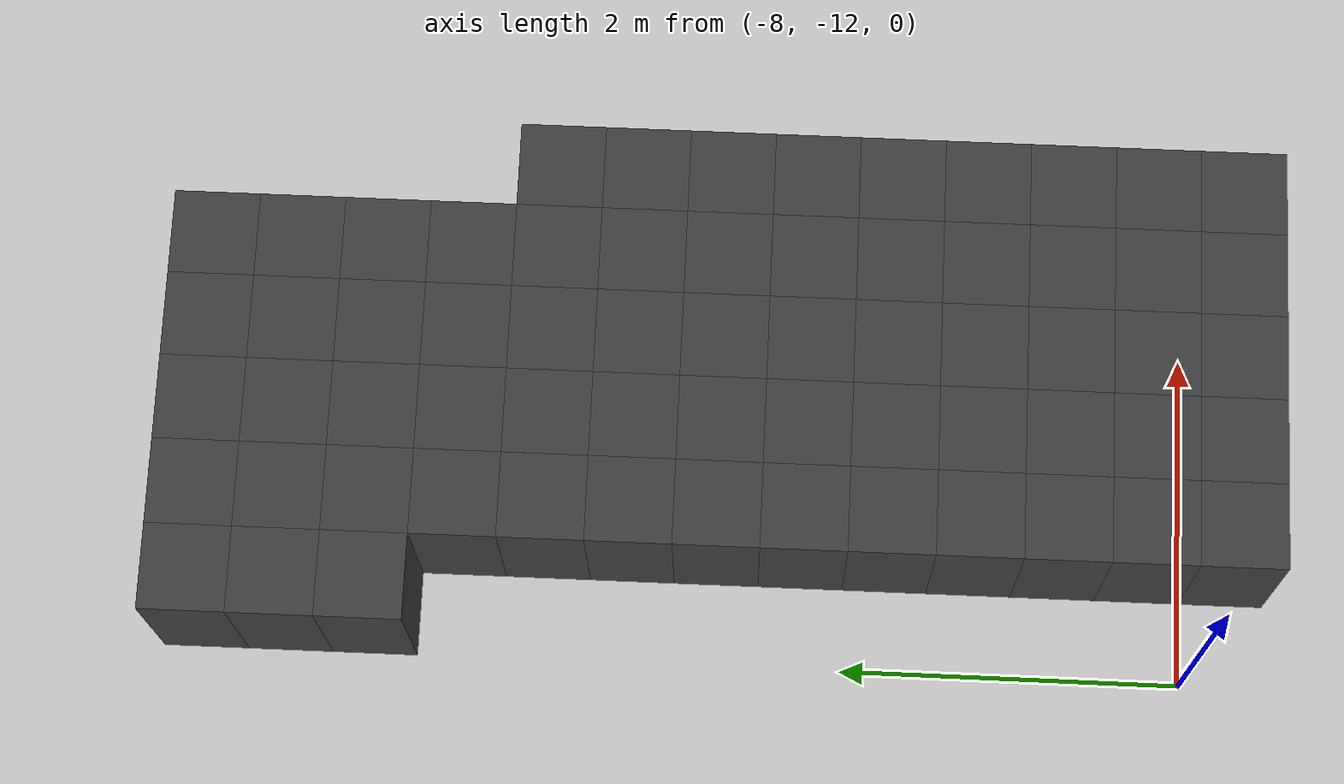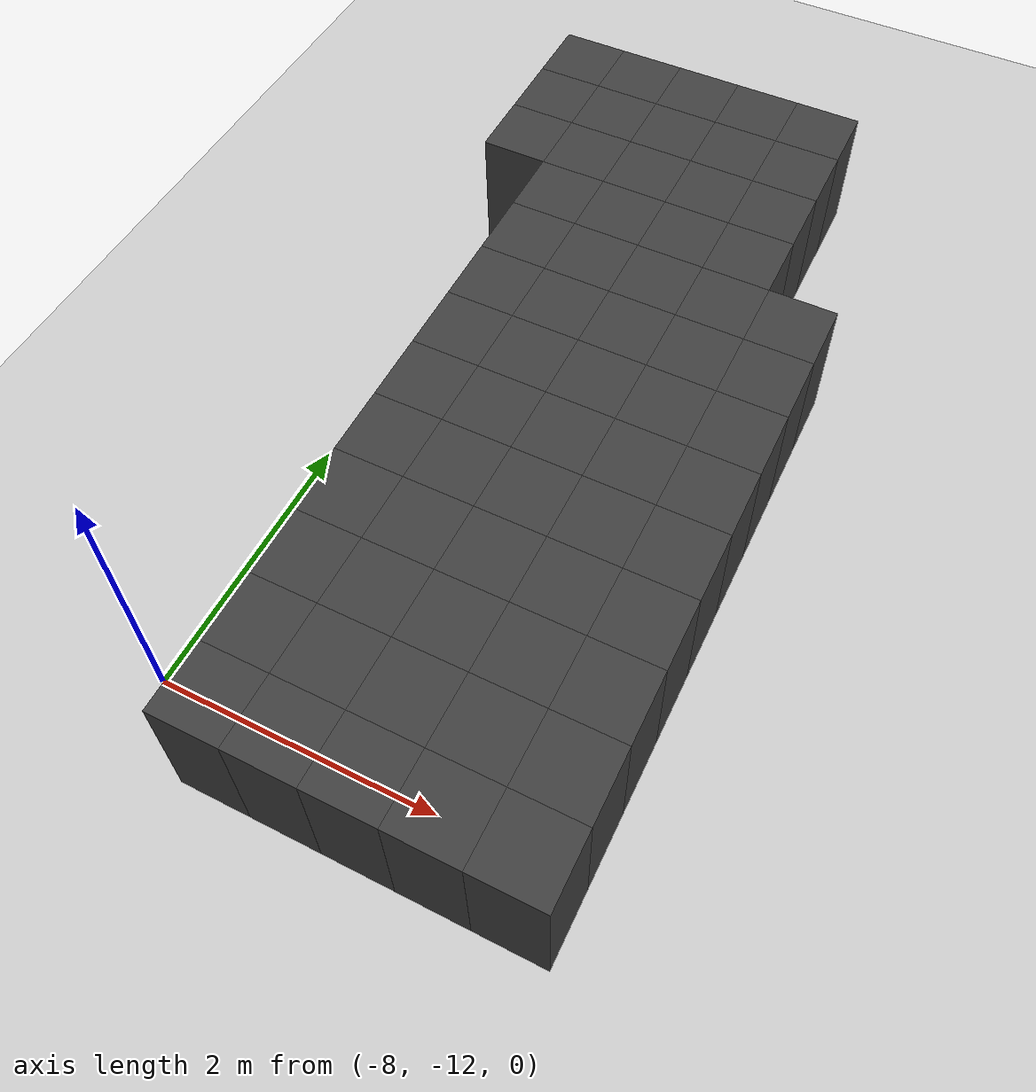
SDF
<sdf version="1.7">
 <world name="map_11515">
  <model name="ground_plane">
   <static>true</static>
   <link name="link">
    <collision name="collision">
     <geometry><plane><normal>0 0 1</normal><size>200 200</size></plane></geometry>
    </collision>
    <visual name="visual">
     <geometry><plane><normal>0 0 1</normal><size>200 200</size></plane></geometry>
     <material><ambient>0.8 0.8 0.8 1</ambient><diffuse>0.8 0.8 0.8 1</diffuse></material>
    </visual>
   </link>
  </model>
  <model name="maze_environment">
   <static>true</static>
   <link name="wall_1610">
    <pose>-7.750 -6.250 0.500 0 0 0</pose>
    <collision name="col"><geometry><box><size>0.5 0.5 1.0</size></box></geometry></collision>
    <visual name="vis">
     <geometry><box><size>0.5 0.5 1.0</size></box></geometry>
     <material><ambient>0.15 0.15 0.15 1</ambient><diffuse>0.25 0.25 0.25 1</diffuse></material>
    </visual>
   </link>
   <link name="wall_1611">
    <pose>-7.250 -6.250 0.500 0 0 0</pose>
    <collision name="col"><geometry><box><size>0.5 0.5 1.0</size></box></geometry></collision>
    <visual name="vis">
     <geometry><box><size>0.5 0.5 1.0</size></box></geometry>
     <material><ambient>0.15 0.15 0.15 1</ambient><diffuse>0.25 0.25 0.25 1</diffuse></material>
    </visual>
   </link>
   <link name="wall_1612">
    <pose>-6.750 -6.250 0.500 0 0 0</pose>
    <collision name="col"><geometry><box><size>0.5 0.5 1.0</size></box></geometry></collision>
    <visual name="vis">
     <geometry><box><size>0.5 0.5 1.0</size></box></geometry>
     <material><ambient>0.15 0.15 0.15 1</ambient><diffuse>0.25 0.25 0.25 1</diffuse></material>
    </visual>
   </link>
   <link name="wall_1613">
    <pose>-6.250 -6.250 0.500 0 0 0</pose>
    <collision name="col"><geometry><box><size>0.5 0.5 1.0</size></box></geometry></collision>
    <visual name="vis">
     <geometry><box><size>0.5 0.5 1.0</size></box></geometry>
     <material><ambient>0.15 0.15 0.15 1</ambient><diffuse>0.25 0.25 0.25 1</diffuse></material>
    </visual>
   </link>
   <link name="wall_1614">
    <pose>-5.750 -6.250 0.500 0 0 0</pose>
    <collision name="col"><geometry><box><size>0.5 0.5 1.0</size></box></geometry></collision>
    <visual name="vis">
     <geometry><box><size>0.5 0.5 1.0</size></box></geometry>
     <material><ambient>0.15 0.15 0.15 1</ambient><diffuse>0.25 0.25 0.25 1</diffuse></material>
    </visual>
   </link>
   <link name="wall_1659">
    <pose>-7.750 -6.750 0.500 0 0 0</pose>
    <collision name="col"><geometry><box><size>0.5 0.5 1.0</size></box></geometry></collision>
    <visual name="vis">
     <geometry><box><size>0.5 0.5 1.0</size></box></geometry>
     <material><ambient>0.15 0.15 0.15 1</ambient><diffuse>0.25 0.25 0.25 1</diffuse></material>
    </visual>
   </link>
   <link name="wall_1660">
    <pose>-7.250 -6.750 0.500 0 0 0</pose>
    <collision name="col"><geometry><box><size>0.5 0.5 1.0</size></box></geometry></collision>
    <visual name="vis">
     <geometry><box><size>0.5 0.5 1.0</size></box></geometry>
     <material><ambient>0.15 0.15 0.15 1</ambient><diffuse>0.25 0.25 0.25 1</diffuse></material>
    </visual>
   </link>
   <link name="wall_1661">
    <pose>-6.750 -6.750 0.500 0 0 0</pose>
    <collision name="col"><geometry><box><size>0.5 0.5 1.0</size></box></geometry></collision>
    <visual name="vis">
     <geometry><box><size>0.5 0.5 1.0</size></box></geometry>
     <material><ambient>0.15 0.15 0.15 1</ambient><diffuse>0.25 0.25 0.25 1</diffuse></material>
    </visual>
   </link>
   <link name="wall_1662">
    <pose>-6.250 -6.750 0.500 0 0 0</pose>
    <collision name="col"><geometry><box><size>0.5 0.5 1.0</size></box></geometry></collision>
    <visual name="vis">
     <geometry><box><size>0.5 0.5 1.0</size></box></geometry>
     <material><ambient>0.15 0.15 0.15 1</ambient><diffuse>0.25 0.25 0.25 1</diffuse></material>
    </visual>
   </link>
   <link name="wall_1663">
    <pose>-5.750 -6.750 0.500 0 0 0</pose>
    <collision name="col"><geometry><box><size>0.5 0.5 1.0</size></box></geometry></collision>
    <visual name="vis">
     <geometry><box><size>0.5 0.5 1.0</size></box></geometry>
     <material><ambient>0.15 0.15 0.15 1</ambient><diffuse>0.25 0.25 0.25 1</diffuse></material>
    </visual>
   </link>
   <link name="wall_1708">
    <pose>-7.750 -7.250 0.500 0 0 0</pose>
    <collision name="col"><geometry><box><size>0.5 0.5 1.0</size></box></geometry></collision>
    <visual name="vis">
     <geometry><box><size>0.5 0.5 1.0</size></box></geometry>
     <material><ambient>0.15 0.15 0.15 1</ambient><diffuse>0.25 0.25 0.25 1</diffuse></material>
    </visual>
   </link>
   <link name="wall_1709">
    <pose>-7.250 -7.250 0.500 0 0 0</pose>
    <collision name="col"><geometry><box><size>0.5 0.5 1.0</size></box></geometry></collision>
    <visual name="vis">
     <geometry><box><size>0.5 0.5 1.0</size></box></geometry>
     <material><ambient>0.15 0.15 0.15 1</ambient><diffuse>0.25 0.25 0.25 1</diffuse></material>
    </visual>
   </link>
   <link name="wall_1710">
    <pose>-6.750 -7.250 0.500 0 0 0</pose>
    <collision name="col"><geometry><box><size>0.5 0.5 1.0</size></box></geometry></collision>
    <visual name="vis">
     <geometry><box><size>0.5 0.5 1.0</size></box></geometry>
     <material><ambient>0.15 0.15 0.15 1</ambient><diffuse>0.25 0.25 0.25 1</diffuse></material>
    </visual>
   </link>
   <link name="wall_1711">
    <pose>-6.250 -7.250 0.500 0 0 0</pose>
    <collision name="col"><geometry><box><size>0.5 0.5 1.0</size></box></geometry></collision>
    <visual name="vis">
     <geometry><box><size>0.5 0.5 1.0</size></box></geometry>
     <material><ambient>0.15 0.15 0.15 1</ambient><diffuse>0.25 0.25 0.25 1</diffuse></material>
    </visual>
   </link>
   <link name="wall_1712">
    <pose>-5.750 -7.250 0.500 0 0 0</pose>
    <collision name="col"><geometry><box><size>0.5 0.5 1.0</size></box></geometry></collision>
    <visual name="vis">
     <geometry><box><size>0.5 0.5 1.0</size></box></geometry>
     <material><ambient>0.15 0.15 0.15 1</ambient><diffuse>0.25 0.25 0.25 1</diffuse></material>
    </visual>
   </link>
   <link name="wall_1758">
    <pose>-7.250 -7.750 0.500 0 0 0</pose>
    <collision name="col"><geometry><box><size>0.5 0.5 1.0</size></box></geometry></collision>
    <visual name="vis">
     <geometry><box><size>0.5 0.5 1.0</size></box></geometry>
     <material><ambient>0.15 0.15 0.15 1</ambient><diffuse>0.25 0.25 0.25 1</diffuse></material>
    </visual>
   </link>
   <link name="wall_1759">
    <pose>-6.750 -7.750 0.500 0 0 0</pose>
    <collision name="col"><geometry><box><size>0.5 0.5 1.0</size></box></geometry></collision>
    <visual name="vis">
     <geometry><box><size>0.5 0.5 1.0</size></box></geometry>
     <material><ambient>0.15 0.15 0.15 1</ambient><diffuse>0.25 0.25 0.25 1</diffuse></material>
    </visual>
   </link>
   <link name="wall_1760">
    <pose>-6.250 -7.750 0.500 0 0 0</pose>
    <collision name="col"><geometry><box><size>0.5 0.5 1.0</size></box></geometry></collision>
    <visual name="vis">
     <geometry><box><size>0.5 0.5 1.0</size></box></geometry>
     <material><ambient>0.15 0.15 0.15 1</ambient><diffuse>0.25 0.25 0.25 1</diffuse></material>
    </visual>
   </link>
   <link name="wall_1761">
    <pose>-5.750 -7.750 0.500 0 0 0</pose>
    <collision name="col"><geometry><box><size>0.5 0.5 1.0</size></box></geometry></collision>
    <visual name="vis">
     <geometry><box><size>0.5 0.5 1.0</size></box></geometry>
     <material><ambient>0.15 0.15 0.15 1</ambient><diffuse>0.25 0.25 0.25 1</diffuse></material>
    </visual>
   </link>
   <link name="wall_1807">
    <pose>-7.250 -8.250 0.500 0 0 0</pose>
    <collision name="col"><geometry><box><size>0.5 0.5 1.0</size></box></geometry></collision>
    <visual name="vis">
     <geometry><box><size>0.5 0.5 1.0</size></box></geometry>
     <material><ambient>0.15 0.15 0.15 1</ambient><diffuse>0.25 0.25 0.25 1</diffuse></material>
    </visual>
   </link>
   <link name="wall_1808">
    <pose>-6.750 -8.250 0.500 0 0 0</pose>
    <collision name="col"><geometry><box><size>0.5 0.5 1.0</size></box></geometry></collision>
    <visual name="vis">
     <geometry><box><size>0.5 0.5 1.0</size></box></geometry>
     <material><ambient>0.15 0.15 0.15 1</ambient><diffuse>0.25 0.25 0.25 1</diffuse></material>
    </visual>
   </link>
   <link name="wall_1809">
    <pose>-6.250 -8.250 0.500 0 0 0</pose>
    <collision name="col"><geometry><box><size>0.5 0.5 1.0</size></box></geometry></collision>
    <visual name="vis">
     <geometry><box><size>0.5 0.5 1.0</size></box></geometry>
     <material><ambient>0.15 0.15 0.15 1</ambient><diffuse>0.25 0.25 0.25 1</diffuse></material>
    </visual>
   </link>
   <link name="wall_1810">
    <pose>-5.750 -8.250 0.500 0 0 0</pose>
    <collision name="col"><geometry><box><size>0.5 0.5 1.0</size></box></geometry></collision>
    <visual name="vis">
     <geometry><box><size>0.5 0.5 1.0</size></box></geometry>
     <material><ambient>0.15 0.15 0.15 1</ambient><diffuse>0.25 0.25 0.25 1</diffuse></material>
    </visual>
   </link>
   <link name="wall_1811">
    <pose>-5.250 -8.250 0.500 0 0 0</pose>
    <collision name="col"><geometry><box><size>0.5 0.5 1.0</size></box></geometry></collision>
    <visual name="vis">
     <geometry><box><size>0.5 0.5 1.0</size></box></geometry>
     <material><ambient>0.15 0.15 0.15 1</ambient><diffuse>0.25 0.25 0.25 1</diffuse></material>
    </visual>
   </link>
   <link name="wall_1856">
    <pose>-7.250 -8.750 0.500 0 0 0</pose>
    <collision name="col"><geometry><box><size>0.5 0.5 1.0</size></box></geometry></collision>
    <visual name="vis">
     <geometry><box><size>0.5 0.5 1.0</size></box></geometry>
     <material><ambient>0.15 0.15 0.15 1</ambient><diffuse>0.25 0.25 0.25 1</diffuse></material>
    </visual>
   </link>
   <link name="wall_1857">
    <pose>-6.750 -8.750 0.500 0 0 0</pose>
    <collision name="col"><geometry><box><size>0.5 0.5 1.0</size></box></geometry></collision>
    <visual name="vis">
     <geometry><box><size>0.5 0.5 1.0</size></box></geometry>
     <material><ambient>0.15 0.15 0.15 1</ambient><diffuse>0.25 0.25 0.25 1</diffuse></material>
    </visual>
   </link>
   <link name="wall_1858">
    <pose>-6.250 -8.750 0.500 0 0 0</pose>
    <collision name="col"><geometry><box><size>0.5 0.5 1.0</size></box></geometry></collision>
    <visual name="vis">
     <geometry><box><size>0.5 0.5 1.0</size></box></geometry>
     <material><ambient>0.15 0.15 0.15 1</ambient><diffuse>0.25 0.25 0.25 1</diffuse></material>
    </visual>
   </link>
   <link name="wall_1859">
    <pose>-5.750 -8.750 0.500 0 0 0</pose>
    <collision name="col"><geometry><box><size>0.5 0.5 1.0</size></box></geometry></collision>
    <visual name="vis">
     <geometry><box><size>0.5 0.5 1.0</size></box></geometry>
     <material><ambient>0.15 0.15 0.15 1</ambient><diffuse>0.25 0.25 0.25 1</diffuse></material>
    </visual>
   </link>
   <link name="wall_1860">
    <pose>-5.250 -8.750 0.500 0 0 0</pose>
    <collision name="col"><geometry><box><size>0.5 0.5 1.0</size></box></geometry></collision>
    <visual name="vis">
     <geometry><box><size>0.5 0.5 1.0</size></box></geometry>
     <material><ambient>0.15 0.15 0.15 1</ambient><diffuse>0.25 0.25 0.25 1</diffuse></material>
    </visual>
   </link>
   <link name="wall_1899">
    <pose>-7.250 -9.250 0.500 0 0 0</pose>
    <collision name="col"><geometry><box><size>0.5 0.5 1.0</size></box></geometry></collision>
    <visual name="vis">
     <geometry><box><size>0.5 0.5 1.0</size></box></geometry>
     <material><ambient>0.15 0.15 0.15 1</ambient><diffuse>0.25 0.25 0.25 1</diffuse></material>
    </visual>
   </link>
   <link name="wall_1900">
    <pose>-6.750 -9.250 0.500 0 0 0</pose>
    <collision name="col"><geometry><box><size>0.5 0.5 1.0</size></box></geometry></collision>
    <visual name="vis">
     <geometry><box><size>0.5 0.5 1.0</size></box></geometry>
     <material><ambient>0.15 0.15 0.15 1</ambient><diffuse>0.25 0.25 0.25 1</diffuse></material>
    </visual>
   </link>
   <link name="wall_1901">
    <pose>-6.250 -9.250 0.500 0 0 0</pose>
    <collision name="col"><geometry><box><size>0.5 0.5 1.0</size></box></geometry></collision>
    <visual name="vis">
     <geometry><box><size>0.5 0.5 1.0</size></box></geometry>
     <material><ambient>0.15 0.15 0.15 1</ambient><diffuse>0.25 0.25 0.25 1</diffuse></material>
    </visual>
   </link>
   <link name="wall_1902">
    <pose>-5.750 -9.250 0.500 0 0 0</pose>
    <collision name="col"><geometry><box><size>0.5 0.5 1.0</size></box></geometry></collision>
    <visual name="vis">
     <geometry><box><size>0.5 0.5 1.0</size></box></geometry>
     <material><ambient>0.15 0.15 0.15 1</ambient><diffuse>0.25 0.25 0.25 1</diffuse></material>
    </visual>
   </link>
   <link name="wall_1903">
    <pose>-5.250 -9.250 0.500 0 0 0</pose>
    <collision name="col"><geometry><box><size>0.5 0.5 1.0</size></box></geometry></collision>
    <visual name="vis">
     <geometry><box><size>0.5 0.5 1.0</size></box></geometry>
     <material><ambient>0.15 0.15 0.15 1</ambient><diffuse>0.25 0.25 0.25 1</diffuse></material>
    </visual>
   </link>
   <link name="wall_1942">
    <pose>-7.250 -9.750 0.500 0 0 0</pose>
    <collision name="col"><geometry><box><size>0.5 0.5 1.0</size></box></geometry></collision>
    <visual name="vis">
     <geometry><box><size>0.5 0.5 1.0</size></box></geometry>
     <material><ambient>0.15 0.15 0.15 1</ambient><diffuse>0.25 0.25 0.25 1</diffuse></material>
    </visual>
   </link>
   <link name="wall_1943">
    <pose>-6.750 -9.750 0.500 0 0 0</pose>
    <collision name="col"><geometry><box><size>0.5 0.5 1.0</size></box></geometry></collision>
    <visual name="vis">
     <geometry><box><size>0.5 0.5 1.0</size></box></geometry>
     <material><ambient>0.15 0.15 0.15 1</ambient><diffuse>0.25 0.25 0.25 1</diffuse></material>
    </visual>
   </link>
   <link name="wall_1944">
    <pose>-6.250 -9.750 0.500 0 0 0</pose>
    <collision name="col"><geometry><box><size>0.5 0.5 1.0</size></box></geometry></collision>
    <visual name="vis">
     <geometry><box><size>0.5 0.5 1.0</size></box></geometry>
     <material><ambient>0.15 0.15 0.15 1</ambient><diffuse>0.25 0.25 0.25 1</diffuse></material>
    </visual>
   </link>
   <link name="wall_1945">
    <pose>-5.750 -9.750 0.500 0 0 0</pose>
    <collision name="col"><geometry><box><size>0.5 0.5 1.0</size></box></geometry></collision>
    <visual name="vis">
     <geometry><box><size>0.5 0.5 1.0</size></box></geometry>
     <material><ambient>0.15 0.15 0.15 1</ambient><diffuse>0.25 0.25 0.25 1</diffuse></material>
    </visual>
   </link>
   <link name="wall_1946">
    <pose>-5.250 -9.750 0.500 0 0 0</pose>
    <collision name="col"><geometry><box><size>0.5 0.5 1.0</size></box></geometry></collision>
    <visual name="vis">
     <geometry><box><size>0.5 0.5 1.0</size></box></geometry>
     <material><ambient>0.15 0.15 0.15 1</ambient><diffuse>0.25 0.25 0.25 1</diffuse></material>
    </visual>
   </link>
   <link name="wall_1984">
    <pose>-7.250 -10.250 0.500 0 0 0</pose>
    <collision name="col"><geometry><box><size>0.5 0.5 1.0</size></box></geometry></collision>
    <visual name="vis">
     <geometry><box><size>0.5 0.5 1.0</size></box></geometry>
     <material><ambient>0.15 0.15 0.15 1</ambient><diffuse>0.25 0.25 0.25 1</diffuse></material>
    </visual>
   </link>
   <link name="wall_1985">
    <pose>-6.750 -10.250 0.500 0 0 0</pose>
    <collision name="col"><geometry><box><size>0.5 0.5 1.0</size></box></geometry></collision>
    <visual name="vis">
     <geometry><box><size>0.5 0.5 1.0</size></box></geometry>
     <material><ambient>0.15 0.15 0.15 1</ambient><diffuse>0.25 0.25 0.25 1</diffuse></material>
    </visual>
   </link>
   <link name="wall_1986">
    <pose>-6.250 -10.250 0.500 0 0 0</pose>
    <collision name="col"><geometry><box><size>0.5 0.5 1.0</size></box></geometry></collision>
    <visual name="vis">
     <geometry><box><size>0.5 0.5 1.0</size></box></geometry>
     <material><ambient>0.15 0.15 0.15 1</ambient><diffuse>0.25 0.25 0.25 1</diffuse></material>
    </visual>
   </link>
   <link name="wall_1987">
    <pose>-5.750 -10.250 0.500 0 0 0</pose>
    <collision name="col"><geometry><box><size>0.5 0.5 1.0</size></box></geometry></collision>
    <visual name="vis">
     <geometry><box><size>0.5 0.5 1.0</size></box></geometry>
     <material><ambient>0.15 0.15 0.15 1</ambient><diffuse>0.25 0.25 0.25 1</diffuse></material>
    </visual>
   </link>
   <link name="wall_1988">
    <pose>-5.250 -10.250 0.500 0 0 0</pose>
    <collision name="col"><geometry><box><size>0.5 0.5 1.0</size></box></geometry></collision>
    <visual name="vis">
     <geometry><box><size>0.5 0.5 1.0</size></box></geometry>
     <material><ambient>0.15 0.15 0.15 1</ambient><diffuse>0.25 0.25 0.25 1</diffuse></material>
    </visual>
   </link>
   <link name="wall_2028">
    <pose>-7.250 -10.750 0.500 0 0 0</pose>
    <collision name="col"><geometry><box><size>0.5 0.5 1.0</size></box></geometry></collision>
    <visual name="vis">
     <geometry><box><size>0.5 0.5 1.0</size></box></geometry>
     <material><ambient>0.15 0.15 0.15 1</ambient><diffuse>0.25 0.25 0.25 1</diffuse></material>
    </visual>
   </link>
   <link name="wall_2029">
    <pose>-6.750 -10.750 0.500 0 0 0</pose>
    <collision name="col"><geometry><box><size>0.5 0.5 1.0</size></box></geometry></collision>
    <visual name="vis">
     <geometry><box><size>0.5 0.5 1.0</size></box></geometry>
     <material><ambient>0.15 0.15 0.15 1</ambient><diffuse>0.25 0.25 0.25 1</diffuse></material>
    </visual>
   </link>
   <link name="wall_2030">
    <pose>-6.250 -10.750 0.500 0 0 0</pose>
    <collision name="col"><geometry><box><size>0.5 0.5 1.0</size></box></geometry></collision>
    <visual name="vis">
     <geometry><box><size>0.5 0.5 1.0</size></box></geometry>
     <material><ambient>0.15 0.15 0.15 1</ambient><diffuse>0.25 0.25 0.25 1</diffuse></material>
    </visual>
   </link>
   <link name="wall_2031">
    <pose>-5.750 -10.750 0.500 0 0 0</pose>
    <collision name="col"><geometry><box><size>0.5 0.5 1.0</size></box></geometry></collision>
    <visual name="vis">
     <geometry><box><size>0.5 0.5 1.0</size></box></geometry>
     <material><ambient>0.15 0.15 0.15 1</ambient><diffuse>0.25 0.25 0.25 1</diffuse></material>
    </visual>
   </link>
   <link name="wall_2032">
    <pose>-5.250 -10.750 0.500 0 0 0</pose>
    <collision name="col"><geometry><box><size>0.5 0.5 1.0</size></box></geometry></collision>
    <visual name="vis">
     <geometry><box><size>0.5 0.5 1.0</size></box></geometry>
     <material><ambient>0.15 0.15 0.15 1</ambient><diffuse>0.25 0.25 0.25 1</diffuse></material>
    </visual>
   </link>
   <link name="wall_2069">
    <pose>-7.250 -11.250 0.500 0 0 0</pose>
    <collision name="col"><geometry><box><size>0.5 0.5 1.0</size></box></geometry></collision>
    <visual name="vis">
     <geometry><box><size>0.5 0.5 1.0</size></box></geometry>
     <material><ambient>0.15 0.15 0.15 1</ambient><diffuse>0.25 0.25 0.25 1</diffuse></material>
    </visual>
   </link>
   <link name="wall_2070">
    <pose>-6.750 -11.250 0.500 0 0 0</pose>
    <collision name="col"><geometry><box><size>0.5 0.5 1.0</size></box></geometry></collision>
    <visual name="vis">
     <geometry><box><size>0.5 0.5 1.0</size></box></geometry>
     <material><ambient>0.15 0.15 0.15 1</ambient><diffuse>0.25 0.25 0.25 1</diffuse></material>
    </visual>
   </link>
   <link name="wall_2071">
    <pose>-6.250 -11.250 0.500 0 0 0</pose>
    <collision name="col"><geometry><box><size>0.5 0.5 1.0</size></box></geometry></collision>
    <visual name="vis">
     <geometry><box><size>0.5 0.5 1.0</size></box></geometry>
     <material><ambient>0.15 0.15 0.15 1</ambient><diffuse>0.25 0.25 0.25 1</diffuse></material>
    </visual>
   </link>
   <link name="wall_2072">
    <pose>-5.750 -11.250 0.500 0 0 0</pose>
    <collision name="col"><geometry><box><size>0.5 0.5 1.0</size></box></geometry></collision>
    <visual name="vis">
     <geometry><box><size>0.5 0.5 1.0</size></box></geometry>
     <material><ambient>0.15 0.15 0.15 1</ambient><diffuse>0.25 0.25 0.25 1</diffuse></material>
    </visual>
   </link>
   <link name="wall_2073">
    <pose>-5.250 -11.250 0.500 0 0 0</pose>
    <collision name="col"><geometry><box><size>0.5 0.5 1.0</size></box></geometry></collision>
    <visual name="vis">
     <geometry><box><size>0.5 0.5 1.0</size></box></geometry>
     <material><ambient>0.15 0.15 0.15 1</ambient><diffuse>0.25 0.25 0.25 1</diffuse></material>
    </visual>
   </link>
   <link name="wall_2089">
    <pose>-7.250 -11.750 0.500 0 0 0</pose>
    <collision name="col"><geometry><box><size>0.5 0.5 1.0</size></box></geometry></collision>
    <visual name="vis">
     <geometry><box><size>0.5 0.5 1.0</size></box></geometry>
     <material><ambient>0.15 0.15 0.15 1</ambient><diffuse>0.25 0.25 0.25 1</diffuse></material>
    </visual>
   </link>
   <link name="wall_2090">
    <pose>-6.750 -11.750 0.500 0 0 0</pose>
    <collision name="col"><geometry><box><size>0.5 0.5 1.0</size></box></geometry></collision>
    <visual name="vis">
     <geometry><box><size>0.5 0.5 1.0</size></box></geometry>
     <material><ambient>0.15 0.15 0.15 1</ambient><diffuse>0.25 0.25 0.25 1</diffuse></material>
    </visual>
   </link>
   <link name="wall_2091">
    <pose>-6.250 -11.750 0.500 0 0 0</pose>
    <collision name="col"><geometry><box><size>0.5 0.5 1.0</size></box></geometry></collision>
    <visual name="vis">
     <geometry><box><size>0.5 0.5 1.0</size></box></geometry>
     <material><ambient>0.15 0.15 0.15 1</ambient><diffuse>0.25 0.25 0.25 1</diffuse></material>
    </visual>
   </link>
   <link name="wall_2092">
    <pose>-5.750 -11.750 0.500 0 0 0</pose>
    <collision name="col"><geometry><box><size>0.5 0.5 1.0</size></box></geometry></collision>
    <visual name="vis">
     <geometry><box><size>0.5 0.5 1.0</size></box></geometry>
     <material><ambient>0.15 0.15 0.15 1</ambient><diffuse>0.25 0.25 0.25 1</diffuse></material>
    </visual>
   </link>
   <link name="wall_2093">
    <pose>-5.250 -11.750 0.500 0 0 0</pose>
    <collision name="col"><geometry><box><size>0.5 0.5 1.0</size></box></geometry></collision>
    <visual name="vis">
     <geometry><box><size>0.5 0.5 1.0</size></box></geometry>
     <material><ambient>0.15 0.15 0.15 1</ambient><diffuse>0.25 0.25 0.25 1</diffuse></material>
    </visual>
   </link>
   <link name="wall_2136">
    <pose>-7.250 -12.250 0.500 0 0 0</pose>
    <collision name="col"><geometry><box><size>0.5 0.5 1.0</size></box></geometry></collision>
    <visual name="vis">
     <geometry><box><size>0.5 0.5 1.0</size></box></geometry>
     <material><ambient>0.15 0.15 0.15 1</ambient><diffuse>0.25 0.25 0.25 1</diffuse></material>
    </visual>
   </link>
   <link name="wall_2137">
    <pose>-6.750 -12.250 0.500 0 0 0</pose>
    <collision name="col"><geometry><box><size>0.5 0.5 1.0</size></box></geometry></collision>
    <visual name="vis">
     <geometry><box><size>0.5 0.5 1.0</size></box></geometry>
     <material><ambient>0.15 0.15 0.15 1</ambient><diffuse>0.25 0.25 0.25 1</diffuse></material>
    </visual>
   </link>
   <link name="wall_2138">
    <pose>-6.250 -12.250 0.500 0 0 0</pose>
    <collision name="col"><geometry><box><size>0.5 0.5 1.0</size></box></geometry></collision>
    <visual name="vis">
     <geometry><box><size>0.5 0.5 1.0</size></box></geometry>
     <material><ambient>0.15 0.15 0.15 1</ambient><diffuse>0.25 0.25 0.25 1</diffuse></material>
    </visual>
   </link>
   <link name="wall_2139">
    <pose>-5.750 -12.250 0.500 0 0 0</pose>
    <collision name="col"><geometry><box><size>0.5 0.5 1.0</size></box></geometry></collision>
    <visual name="vis">
     <geometry><box><size>0.5 0.5 1.0</size></box></geometry>
     <material><ambient>0.15 0.15 0.15 1</ambient><diffuse>0.25 0.25 0.25 1</diffuse></material>
    </visual>
   </link>
   <link name="wall_2140">
    <pose>-5.250 -12.250 0.500 0 0 0</pose>
    <collision name="col"><geometry><box><size>0.5 0.5 1.0</size></box></geometry></collision>
    <visual name="vis">
     <geometry><box><size>0.5 0.5 1.0</size></box></geometry>
     <material><ambient>0.15 0.15 0.15 1</ambient><diffuse>0.25 0.25 0.25 1</diffuse></material>
    </visual>
   </link>
  </model>
 </world>
</sdf>
